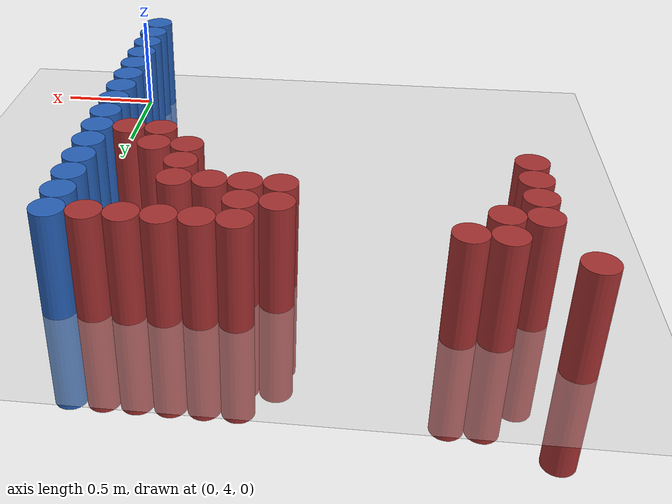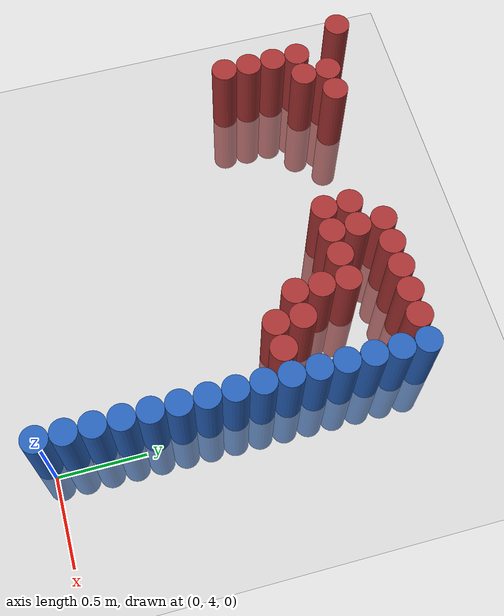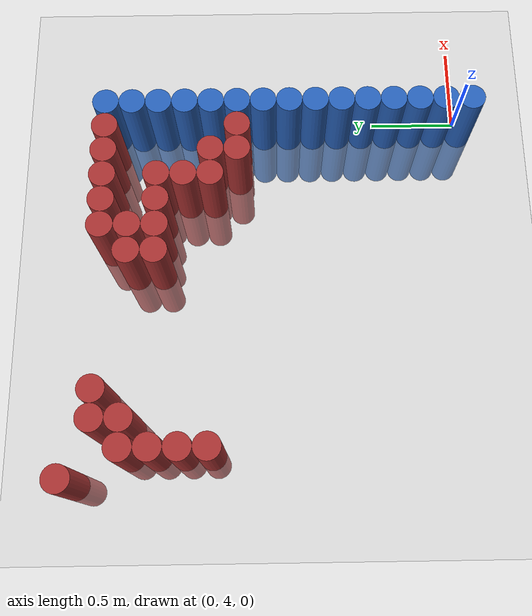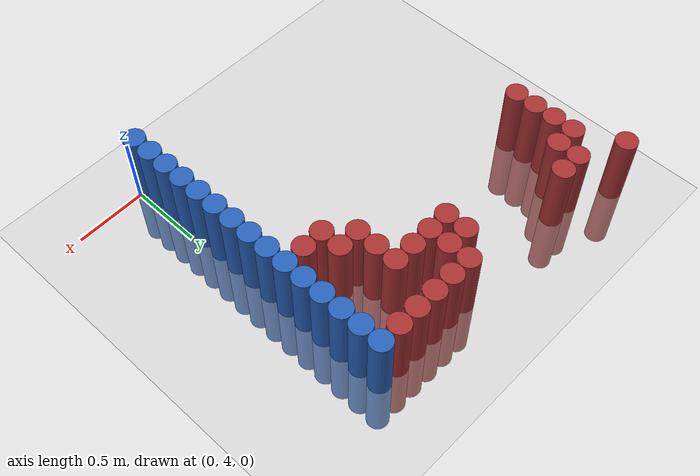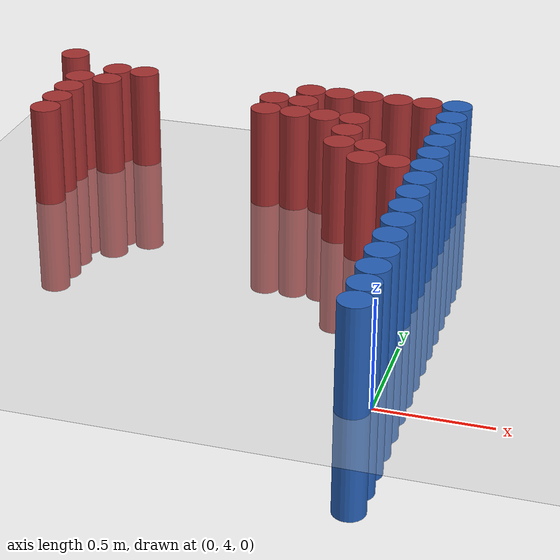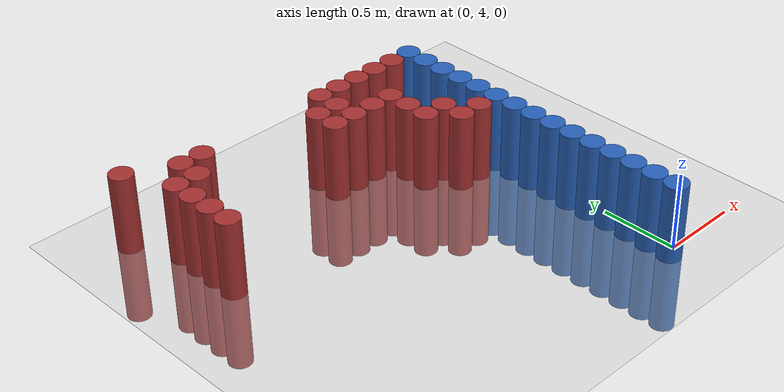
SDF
<sdf version="1.6">
 <world name="default">
  <model name="ground_plane">
   <static>1</static>
   <link name="link">
    <collision name="collision">
     <geometry><plane><normal>0 0 1</normal><size>100 100</size></plane></geometry>
     <surface><friction><ode><mu>100</mu><mu2>50</mu2></ode></friction></surface>
    </collision>
    <visual name="visual">
     <cast_shadows>0</cast_shadows>
     <geometry><plane><normal>0 0 1</normal><size>100 100</size></plane></geometry>
     <material>
      <script><uri>file://media/materials/scripts/gazebo.material</uri><name>Gazebo/Grey</name></script>
     </material>
    </visual>
   </link>
  </model>
  <model name="unit_cylinder_80">
   <static>1</static>
   <pose>-0.075000 3.975000 0.000000 0.000000 0.000000 0.000000</pose>
   <link name="link">
    <inertial>
     <mass>1</mass>
     <inertia><ixx>0.145833</ixx><ixy>0</ixy><ixz>0</ixz><iyy>0.145833</iyy><iyz>0</iyz><izz>0.125</izz></inertia>
    </inertial>
    <collision name="collision">
     <geometry><cylinder><radius>0.075000</radius><length>1</length></cylinder></geometry>
    </collision>
    <visual name="visual">
     <geometry><cylinder><radius>0.075000</radius><length>1</length></cylinder></geometry>
     <material>
      <ambient>0.152000 0.379000 0.720000 1</ambient>
      <diffuse>0.152000 0.379000 0.720000 1</diffuse>
     </material>
     <material>
      <script><name>Gazebo/Grey</name><uri>file://media/materials/scripts/gazebo.material</uri></script>
     </material>
    </visual>
    <sensor name="sensor_contact" type="contact"><contact><collision>collision</collision></contact></sensor>
   </link>
   <plugin filename="gz-sim-touchplugin-system" name="gz::sim::systems::TouchPlugin">
    <target>robot</target>
    <namespace>robot</namespace>
    <time>0.001</time>
    <enabled>true</enabled>
   </plugin>
  </model>
  <model name="unit_cylinder_82">
   <static>1</static>
   <pose>-0.075000 4.125000 0.000000 0.000000 0.000000 0.000000</pose>
   <link name="link">
    <inertial>
     <mass>1</mass>
     <inertia><ixx>0.145833</ixx><ixy>0</ixy><ixz>0</ixz><iyy>0.145833</iyy><iyz>0</iyz><izz>0.125</izz></inertia>
    </inertial>
    <collision name="collision">
     <geometry><cylinder><radius>0.075000</radius><length>1</length></cylinder></geometry>
    </collision>
    <visual name="visual">
     <geometry><cylinder><radius>0.075000</radius><length>1</length></cylinder></geometry>
     <material>
      <ambient>0.152000 0.379000 0.720000 1</ambient>
      <diffuse>0.152000 0.379000 0.720000 1</diffuse>
     </material>
     <material>
      <script><name>Gazebo/Grey</name><uri>file://media/materials/scripts/gazebo.material</uri></script>
     </material>
    </visual>
    <sensor name="sensor_contact" type="contact"><contact><collision>collision</collision></contact></sensor>
   </link>
   <plugin filename="gz-sim-touchplugin-system" name="gz::sim::systems::TouchPlugin">
    <target>robot</target>
    <namespace>robot</namespace>
    <time>0.001</time>
    <enabled>true</enabled>
   </plugin>
  </model>
  <model name="unit_cylinder_84">
   <static>1</static>
   <pose>-0.075000 4.275000 0.000000 0.000000 0.000000 0.000000</pose>
   <link name="link">
    <inertial>
     <mass>1</mass>
     <inertia><ixx>0.145833</ixx><ixy>0</ixy><ixz>0</ixz><iyy>0.145833</iyy><iyz>0</iyz><izz>0.125</izz></inertia>
    </inertial>
    <collision name="collision">
     <geometry><cylinder><radius>0.075000</radius><length>1</length></cylinder></geometry>
    </collision>
    <visual name="visual">
     <geometry><cylinder><radius>0.075000</radius><length>1</length></cylinder></geometry>
     <material>
      <ambient>0.152000 0.379000 0.720000 1</ambient>
      <diffuse>0.152000 0.379000 0.720000 1</diffuse>
     </material>
     <material>
      <script><name>Gazebo/Grey</name><uri>file://media/materials/scripts/gazebo.material</uri></script>
     </material>
    </visual>
    <sensor name="sensor_contact" type="contact"><contact><collision>collision</collision></contact></sensor>
   </link>
   <plugin filename="gz-sim-touchplugin-system" name="gz::sim::systems::TouchPlugin">
    <target>robot</target>
    <namespace>robot</namespace>
    <time>0.001</time>
    <enabled>true</enabled>
   </plugin>
  </model>
  <model name="unit_cylinder_86">
   <static>1</static>
   <pose>-0.075000 4.425000 0.000000 0.000000 0.000000 0.000000</pose>
   <link name="link">
    <inertial>
     <mass>1</mass>
     <inertia><ixx>0.145833</ixx><ixy>0</ixy><ixz>0</ixz><iyy>0.145833</iyy><iyz>0</iyz><izz>0.125</izz></inertia>
    </inertial>
    <collision name="collision">
     <geometry><cylinder><radius>0.075000</radius><length>1</length></cylinder></geometry>
    </collision>
    <visual name="visual">
     <geometry><cylinder><radius>0.075000</radius><length>1</length></cylinder></geometry>
     <material>
      <ambient>0.152000 0.379000 0.720000 1</ambient>
      <diffuse>0.152000 0.379000 0.720000 1</diffuse>
     </material>
     <material>
      <script><name>Gazebo/Grey</name><uri>file://media/materials/scripts/gazebo.material</uri></script>
     </material>
    </visual>
    <sensor name="sensor_contact" type="contact"><contact><collision>collision</collision></contact></sensor>
   </link>
   <plugin filename="gz-sim-touchplugin-system" name="gz::sim::systems::TouchPlugin">
    <target>robot</target>
    <namespace>robot</namespace>
    <time>0.001</time>
    <enabled>true</enabled>
   </plugin>
  </model>
  <model name="unit_cylinder_88">
   <static>1</static>
   <pose>-0.075000 4.575000 0.000000 0.000000 0.000000 0.000000</pose>
   <link name="link">
    <inertial>
     <mass>1</mass>
     <inertia><ixx>0.145833</ixx><ixy>0</ixy><ixz>0</ixz><iyy>0.145833</iyy><iyz>0</iyz><izz>0.125</izz></inertia>
    </inertial>
    <collision name="collision">
     <geometry><cylinder><radius>0.075000</radius><length>1</length></cylinder></geometry>
    </collision>
    <visual name="visual">
     <geometry><cylinder><radius>0.075000</radius><length>1</length></cylinder></geometry>
     <material>
      <ambient>0.152000 0.379000 0.720000 1</ambient>
      <diffuse>0.152000 0.379000 0.720000 1</diffuse>
     </material>
     <material>
      <script><name>Gazebo/Grey</name><uri>file://media/materials/scripts/gazebo.material</uri></script>
     </material>
    </visual>
    <sensor name="sensor_contact" type="contact"><contact><collision>collision</collision></contact></sensor>
   </link>
   <plugin filename="gz-sim-touchplugin-system" name="gz::sim::systems::TouchPlugin">
    <target>robot</target>
    <namespace>robot</namespace>
    <time>0.001</time>
    <enabled>true</enabled>
   </plugin>
  </model>
  <model name="unit_cylinder_90">
   <static>1</static>
   <pose>-0.075000 4.725000 0.000000 0.000000 0.000000 0.000000</pose>
   <link name="link">
    <inertial>
     <mass>1</mass>
     <inertia><ixx>0.145833</ixx><ixy>0</ixy><ixz>0</ixz><iyy>0.145833</iyy><iyz>0</iyz><izz>0.125</izz></inertia>
    </inertial>
    <collision name="collision">
     <geometry><cylinder><radius>0.075000</radius><length>1</length></cylinder></geometry>
    </collision>
    <visual name="visual">
     <geometry><cylinder><radius>0.075000</radius><length>1</length></cylinder></geometry>
     <material>
      <ambient>0.152000 0.379000 0.720000 1</ambient>
      <diffuse>0.152000 0.379000 0.720000 1</diffuse>
     </material>
     <material>
      <script><name>Gazebo/Grey</name><uri>file://media/materials/scripts/gazebo.material</uri></script>
     </material>
    </visual>
    <sensor name="sensor_contact" type="contact"><contact><collision>collision</collision></contact></sensor>
   </link>
   <plugin filename="gz-sim-touchplugin-system" name="gz::sim::systems::TouchPlugin">
    <target>robot</target>
    <namespace>robot</namespace>
    <time>0.001</time>
    <enabled>true</enabled>
   </plugin>
  </model>
  <model name="unit_cylinder_92">
   <static>1</static>
   <pose>-0.075000 4.875000 0.000000 0.000000 0.000000 0.000000</pose>
   <link name="link">
    <inertial>
     <mass>1</mass>
     <inertia><ixx>0.145833</ixx><ixy>0</ixy><ixz>0</ixz><iyy>0.145833</iyy><iyz>0</iyz><izz>0.125</izz></inertia>
    </inertial>
    <collision name="collision">
     <geometry><cylinder><radius>0.075000</radius><length>1</length></cylinder></geometry>
    </collision>
    <visual name="visual">
     <geometry><cylinder><radius>0.075000</radius><length>1</length></cylinder></geometry>
     <material>
      <ambient>0.152000 0.379000 0.720000 1</ambient>
      <diffuse>0.152000 0.379000 0.720000 1</diffuse>
     </material>
     <material>
      <script><name>Gazebo/Grey</name><uri>file://media/materials/scripts/gazebo.material</uri></script>
     </material>
    </visual>
    <sensor name="sensor_contact" type="contact"><contact><collision>collision</collision></contact></sensor>
   </link>
   <plugin filename="gz-sim-touchplugin-system" name="gz::sim::systems::TouchPlugin">
    <target>robot</target>
    <namespace>robot</namespace>
    <time>0.001</time>
    <enabled>true</enabled>
   </plugin>
  </model>
  <model name="unit_cylinder_94">
   <static>1</static>
   <pose>-0.075000 5.025000 0.000000 0.000000 0.000000 0.000000</pose>
   <link name="link">
    <inertial>
     <mass>1</mass>
     <inertia><ixx>0.145833</ixx><ixy>0</ixy><ixz>0</ixz><iyy>0.145833</iyy><iyz>0</iyz><izz>0.125</izz></inertia>
    </inertial>
    <collision name="collision">
     <geometry><cylinder><radius>0.075000</radius><length>1</length></cylinder></geometry>
    </collision>
    <visual name="visual">
     <geometry><cylinder><radius>0.075000</radius><length>1</length></cylinder></geometry>
     <material>
      <ambient>0.152000 0.379000 0.720000 1</ambient>
      <diffuse>0.152000 0.379000 0.720000 1</diffuse>
     </material>
     <material>
      <script><name>Gazebo/Grey</name><uri>file://media/materials/scripts/gazebo.material</uri></script>
     </material>
    </visual>
    <sensor name="sensor_contact" type="contact"><contact><collision>collision</collision></contact></sensor>
   </link>
   <plugin filename="gz-sim-touchplugin-system" name="gz::sim::systems::TouchPlugin">
    <target>robot</target>
    <namespace>robot</namespace>
    <time>0.001</time>
    <enabled>true</enabled>
   </plugin>
  </model>
  <model name="unit_cylinder_219">
   <static>1</static>
   <pose>-2.175000 6.225000 0.000000 0.000000 0.000000 0.000000</pose>
   <link name="link">
    <inertial>
     <mass>1</mass>
     <inertia><ixx>0.145833</ixx><ixy>0</ixy><ixz>0</ixz><iyy>0.145833</iyy><iyz>0</iyz><izz>0.125</izz></inertia>
    </inertial>
    <collision name="collision">
     <geometry><cylinder><radius>0.075000</radius><length>1</length></cylinder></geometry>
    </collision>
    <visual name="visual">
     <geometry><cylinder><radius>0.075000</radius><length>1</length></cylinder></geometry>
     <material>
      <ambient>0.648000 0.192000 0.192000 1</ambient>
      <diffuse>0.648000 0.192000 0.192000 1</diffuse>
     </material>
     <material>
      <script><name>Gazebo/Grey</name><uri>file://media/materials/scripts/gazebo.material</uri></script>
     </material>
    </visual>
    <sensor name="sensor_contact" type="contact"><contact><collision>collision</collision></contact></sensor>
   </link>
   <plugin filename="gz-sim-touchplugin-system" name="gz::sim::systems::TouchPlugin">
    <target>robot</target>
    <namespace>robot</namespace>
    <time>0.001</time>
    <enabled>true</enabled>
   </plugin>
  </model>
  <model name="unit_cylinder_220">
   <static>1</static>
   <pose>-2.025000 5.475000 0.000000 0.000000 0.000000 0.000000</pose>
   <link name="link">
    <inertial>
     <mass>1</mass>
     <inertia><ixx>0.145833</ixx><ixy>0</ixy><ixz>0</ixz><iyy>0.145833</iyy><iyz>0</iyz><izz>0.125</izz></inertia>
    </inertial>
    <collision name="collision">
     <geometry><cylinder><radius>0.075000</radius><length>1</length></cylinder></geometry>
    </collision>
    <visual name="visual">
     <geometry><cylinder><radius>0.075000</radius><length>1</length></cylinder></geometry>
     <material>
      <ambient>0.648000 0.192000 0.192000 1</ambient>
      <diffuse>0.648000 0.192000 0.192000 1</diffuse>
     </material>
     <material>
      <script><name>Gazebo/Grey</name><uri>file://media/materials/scripts/gazebo.material</uri></script>
     </material>
    </visual>
    <sensor name="sensor_contact" type="contact"><contact><collision>collision</collision></contact></sensor>
   </link>
   <plugin filename="gz-sim-touchplugin-system" name="gz::sim::systems::TouchPlugin">
    <target>robot</target>
    <namespace>robot</namespace>
    <time>0.001</time>
    <enabled>true</enabled>
   </plugin>
  </model>
  <model name="unit_cylinder_221">
   <static>1</static>
   <pose>-2.025000 5.625000 0.000000 0.000000 0.000000 0.000000</pose>
   <link name="link">
    <inertial>
     <mass>1</mass>
     <inertia><ixx>0.145833</ixx><ixy>0</ixy><ixz>0</ixz><iyy>0.145833</iyy><iyz>0</iyz><izz>0.125</izz></inertia>
    </inertial>
    <collision name="collision">
     <geometry><cylinder><radius>0.075000</radius><length>1</length></cylinder></geometry>
    </collision>
    <visual name="visual">
     <geometry><cylinder><radius>0.075000</radius><length>1</length></cylinder></geometry>
     <material>
      <ambient>0.648000 0.192000 0.192000 1</ambient>
      <diffuse>0.648000 0.192000 0.192000 1</diffuse>
     </material>
     <material>
      <script><name>Gazebo/Grey</name><uri>file://media/materials/scripts/gazebo.material</uri></script>
     </material>
    </visual>
    <sensor name="sensor_contact" type="contact"><contact><collision>collision</collision></contact></sensor>
   </link>
   <plugin filename="gz-sim-touchplugin-system" name="gz::sim::systems::TouchPlugin">
    <target>robot</target>
    <namespace>robot</namespace>
    <time>0.001</time>
    <enabled>true</enabled>
   </plugin>
  </model>
  <model name="unit_cylinder_222">
   <static>1</static>
   <pose>-2.025000 5.775000 0.000000 0.000000 0.000000 0.000000</pose>
   <link name="link">
    <inertial>
     <mass>1</mass>
     <inertia><ixx>0.145833</ixx><ixy>0</ixy><ixz>0</ixz><iyy>0.145833</iyy><iyz>0</iyz><izz>0.125</izz></inertia>
    </inertial>
    <collision name="collision">
     <geometry><cylinder><radius>0.075000</radius><length>1</length></cylinder></geometry>
    </collision>
    <visual name="visual">
     <geometry><cylinder><radius>0.075000</radius><length>1</length></cylinder></geometry>
     <material>
      <ambient>0.648000 0.192000 0.192000 1</ambient>
      <diffuse>0.648000 0.192000 0.192000 1</diffuse>
     </material>
     <material>
      <script><name>Gazebo/Grey</name><uri>file://media/materials/scripts/gazebo.material</uri></script>
     </material>
    </visual>
    <sensor name="sensor_contact" type="contact"><contact><collision>collision</collision></contact></sensor>
   </link>
   <plugin filename="gz-sim-touchplugin-system" name="gz::sim::systems::TouchPlugin">
    <target>robot</target>
    <namespace>robot</namespace>
    <time>0.001</time>
    <enabled>true</enabled>
   </plugin>
  </model>
  <model name="unit_cylinder_223">
   <static>1</static>
   <pose>-2.025000 5.925000 0.000000 0.000000 0.000000 0.000000</pose>
   <link name="link">
    <inertial>
     <mass>1</mass>
     <inertia><ixx>0.145833</ixx><ixy>0</ixy><ixz>0</ixz><iyy>0.145833</iyy><iyz>0</iyz><izz>0.125</izz></inertia>
    </inertial>
    <collision name="collision">
     <geometry><cylinder><radius>0.075000</radius><length>1</length></cylinder></geometry>
    </collision>
    <visual name="visual">
     <geometry><cylinder><radius>0.075000</radius><length>1</length></cylinder></geometry>
     <material>
      <ambient>0.648000 0.192000 0.192000 1</ambient>
      <diffuse>0.648000 0.192000 0.192000 1</diffuse>
     </material>
     <material>
      <script><name>Gazebo/Grey</name><uri>file://media/materials/scripts/gazebo.material</uri></script>
     </material>
    </visual>
    <sensor name="sensor_contact" type="contact"><contact><collision>collision</collision></contact></sensor>
   </link>
   <plugin filename="gz-sim-touchplugin-system" name="gz::sim::systems::TouchPlugin">
    <target>robot</target>
    <namespace>robot</namespace>
    <time>0.001</time>
    <enabled>true</enabled>
   </plugin>
  </model>
  <model name="unit_cylinder_226">
   <static>1</static>
   <pose>-1.875000 5.925000 0.000000 0.000000 0.000000 0.000000</pose>
   <link name="link">
    <inertial>
     <mass>1</mass>
     <inertia><ixx>0.145833</ixx><ixy>0</ixy><ixz>0</ixz><iyy>0.145833</iyy><iyz>0</iyz><izz>0.125</izz></inertia>
    </inertial>
    <collision name="collision">
     <geometry><cylinder><radius>0.075000</radius><length>1</length></cylinder></geometry>
    </collision>
    <visual name="visual">
     <geometry><cylinder><radius>0.075000</radius><length>1</length></cylinder></geometry>
     <material>
      <ambient>0.648000 0.192000 0.192000 1</ambient>
      <diffuse>0.648000 0.192000 0.192000 1</diffuse>
     </material>
     <material>
      <script><name>Gazebo/Grey</name><uri>file://media/materials/scripts/gazebo.material</uri></script>
     </material>
    </visual>
    <sensor name="sensor_contact" type="contact"><contact><collision>collision</collision></contact></sensor>
   </link>
   <plugin filename="gz-sim-touchplugin-system" name="gz::sim::systems::TouchPlugin">
    <target>robot</target>
    <namespace>robot</namespace>
    <time>0.001</time>
    <enabled>true</enabled>
   </plugin>
  </model>
  <model name="unit_cylinder_227">
   <static>1</static>
   <pose>-1.875000 6.075000 0.000000 0.000000 0.000000 0.000000</pose>
   <link name="link">
    <inertial>
     <mass>1</mass>
     <inertia><ixx>0.145833</ixx><ixy>0</ixy><ixz>0</ixz><iyy>0.145833</iyy><iyz>0</iyz><izz>0.125</izz></inertia>
    </inertial>
    <collision name="collision">
     <geometry><cylinder><radius>0.075000</radius><length>1</length></cylinder></geometry>
    </collision>
    <visual name="visual">
     <geometry><cylinder><radius>0.075000</radius><length>1</length></cylinder></geometry>
     <material>
      <ambient>0.648000 0.192000 0.192000 1</ambient>
      <diffuse>0.648000 0.192000 0.192000 1</diffuse>
     </material>
     <material>
      <script><name>Gazebo/Grey</name><uri>file://media/materials/scripts/gazebo.material</uri></script>
     </material>
    </visual>
    <sensor name="sensor_contact" type="contact"><contact><collision>collision</collision></contact></sensor>
   </link>
   <plugin filename="gz-sim-touchplugin-system" name="gz::sim::systems::TouchPlugin">
    <target>robot</target>
    <namespace>robot</namespace>
    <time>0.001</time>
    <enabled>true</enabled>
   </plugin>
  </model>
  <model name="unit_cylinder_231">
   <static>1</static>
   <pose>-1.725000 6.075000 0.000000 0.000000 0.000000 0.000000</pose>
   <link name="link">
    <inertial>
     <mass>1</mass>
     <inertia><ixx>0.145833</ixx><ixy>0</ixy><ixz>0</ixz><iyy>0.145833</iyy><iyz>0</iyz><izz>0.125</izz></inertia>
    </inertial>
    <collision name="collision">
     <geometry><cylinder><radius>0.075000</radius><length>1</length></cylinder></geometry>
    </collision>
    <visual name="visual">
     <geometry><cylinder><radius>0.075000</radius><length>1</length></cylinder></geometry>
     <material>
      <ambient>0.648000 0.192000 0.192000 1</ambient>
      <diffuse>0.648000 0.192000 0.192000 1</diffuse>
     </material>
     <material>
      <script><name>Gazebo/Grey</name><uri>file://media/materials/scripts/gazebo.material</uri></script>
     </material>
    </visual>
    <sensor name="sensor_contact" type="contact"><contact><collision>collision</collision></contact></sensor>
   </link>
   <plugin filename="gz-sim-touchplugin-system" name="gz::sim::systems::TouchPlugin">
    <target>robot</target>
    <namespace>robot</namespace>
    <time>0.001</time>
    <enabled>true</enabled>
   </plugin>
  </model>
  <model name="unit_cylinder_257">
   <static>1</static>
   <pose>-0.975000 5.775000 0.000000 0.000000 0.000000 0.000000</pose>
   <link name="link">
    <inertial>
     <mass>1</mass>
     <inertia><ixx>0.145833</ixx><ixy>0</ixy><ixz>0</ixz><iyy>0.145833</iyy><iyz>0</iyz><izz>0.125</izz></inertia>
    </inertial>
    <collision name="collision">
     <geometry><cylinder><radius>0.075000</radius><length>1</length></cylinder></geometry>
    </collision>
    <visual name="visual">
     <geometry><cylinder><radius>0.075000</radius><length>1</length></cylinder></geometry>
     <material>
      <ambient>0.648000 0.192000 0.192000 1</ambient>
      <diffuse>0.648000 0.192000 0.192000 1</diffuse>
     </material>
     <material>
      <script><name>Gazebo/Grey</name><uri>file://media/materials/scripts/gazebo.material</uri></script>
     </material>
    </visual>
    <sensor name="sensor_contact" type="contact"><contact><collision>collision</collision></contact></sensor>
   </link>
   <plugin filename="gz-sim-touchplugin-system" name="gz::sim::systems::TouchPlugin">
    <target>robot</target>
    <namespace>robot</namespace>
    <time>0.001</time>
    <enabled>true</enabled>
   </plugin>
  </model>
  <model name="unit_cylinder_258">
   <static>1</static>
   <pose>-0.975000 5.925000 0.000000 0.000000 0.000000 0.000000</pose>
   <link name="link">
    <inertial>
     <mass>1</mass>
     <inertia><ixx>0.145833</ixx><ixy>0</ixy><ixz>0</ixz><iyy>0.145833</iyy><iyz>0</iyz><izz>0.125</izz></inertia>
    </inertial>
    <collision name="collision">
     <geometry><cylinder><radius>0.075000</radius><length>1</length></cylinder></geometry>
    </collision>
    <visual name="visual">
     <geometry><cylinder><radius>0.075000</radius><length>1</length></cylinder></geometry>
     <material>
      <ambient>0.648000 0.192000 0.192000 1</ambient>
      <diffuse>0.648000 0.192000 0.192000 1</diffuse>
     </material>
     <material>
      <script><name>Gazebo/Grey</name><uri>file://media/materials/scripts/gazebo.material</uri></script>
     </material>
    </visual>
    <sensor name="sensor_contact" type="contact"><contact><collision>collision</collision></contact></sensor>
   </link>
   <plugin filename="gz-sim-touchplugin-system" name="gz::sim::systems::TouchPlugin">
    <target>robot</target>
    <namespace>robot</namespace>
    <time>0.001</time>
    <enabled>true</enabled>
   </plugin>
  </model>
  <model name="unit_cylinder_263">
   <static>1</static>
   <pose>-0.825000 5.775000 0.000000 0.000000 0.000000 0.000000</pose>
   <link name="link">
    <inertial>
     <mass>1</mass>
     <inertia><ixx>0.145833</ixx><ixy>0</ixy><ixz>0</ixz><iyy>0.145833</iyy><iyz>0</iyz><izz>0.125</izz></inertia>
    </inertial>
    <collision name="collision">
     <geometry><cylinder><radius>0.075000</radius><length>1</length></cylinder></geometry>
    </collision>
    <visual name="visual">
     <geometry><cylinder><radius>0.075000</radius><length>1</length></cylinder></geometry>
     <material>
      <ambient>0.648000 0.192000 0.192000 1</ambient>
      <diffuse>0.648000 0.192000 0.192000 1</diffuse>
     </material>
     <material>
      <script><name>Gazebo/Grey</name><uri>file://media/materials/scripts/gazebo.material</uri></script>
     </material>
    </visual>
    <sensor name="sensor_contact" type="contact"><contact><collision>collision</collision></contact></sensor>
   </link>
   <plugin filename="gz-sim-touchplugin-system" name="gz::sim::systems::TouchPlugin">
    <target>robot</target>
    <namespace>robot</namespace>
    <time>0.001</time>
    <enabled>true</enabled>
   </plugin>
  </model>
  <model name="unit_cylinder_264">
   <static>1</static>
   <pose>-0.825000 5.925000 0.000000 0.000000 0.000000 0.000000</pose>
   <link name="link">
    <inertial>
     <mass>1</mass>
     <inertia><ixx>0.145833</ixx><ixy>0</ixy><ixz>0</ixz><iyy>0.145833</iyy><iyz>0</iyz><izz>0.125</izz></inertia>
    </inertial>
    <collision name="collision">
     <geometry><cylinder><radius>0.075000</radius><length>1</length></cylinder></geometry>
    </collision>
    <visual name="visual">
     <geometry><cylinder><radius>0.075000</radius><length>1</length></cylinder></geometry>
     <material>
      <ambient>0.648000 0.192000 0.192000 1</ambient>
      <diffuse>0.648000 0.192000 0.192000 1</diffuse>
     </material>
     <material>
      <script><name>Gazebo/Grey</name><uri>file://media/materials/scripts/gazebo.material</uri></script>
     </material>
    </visual>
    <sensor name="sensor_contact" type="contact"><contact><collision>collision</collision></contact></sensor>
   </link>
   <plugin filename="gz-sim-touchplugin-system" name="gz::sim::systems::TouchPlugin">
    <target>robot</target>
    <namespace>robot</namespace>
    <time>0.001</time>
    <enabled>true</enabled>
   </plugin>
  </model>
  <model name="unit_cylinder_265">
   <static>1</static>
   <pose>-0.825000 6.075000 0.000000 0.000000 0.000000 0.000000</pose>
   <link name="link">
    <inertial>
     <mass>1</mass>
     <inertia><ixx>0.145833</ixx><ixy>0</ixy><ixz>0</ixz><iyy>0.145833</iyy><iyz>0</iyz><izz>0.125</izz></inertia>
    </inertial>
    <collision name="collision">
     <geometry><cylinder><radius>0.075000</radius><length>1</length></cylinder></geometry>
    </collision>
    <visual name="visual">
     <geometry><cylinder><radius>0.075000</radius><length>1</length></cylinder></geometry>
     <material>
      <ambient>0.648000 0.192000 0.192000 1</ambient>
      <diffuse>0.648000 0.192000 0.192000 1</diffuse>
     </material>
     <material>
      <script><name>Gazebo/Grey</name><uri>file://media/materials/scripts/gazebo.material</uri></script>
     </material>
    </visual>
    <sensor name="sensor_contact" type="contact"><contact><collision>collision</collision></contact></sensor>
   </link>
   <plugin filename="gz-sim-touchplugin-system" name="gz::sim::systems::TouchPlugin">
    <target>robot</target>
    <namespace>robot</namespace>
    <time>0.001</time>
    <enabled>true</enabled>
   </plugin>
  </model>
  <model name="unit_cylinder_275">
   <static>1</static>
   <pose>-0.675000 5.775000 0.000000 0.000000 0.000000 0.000000</pose>
   <link name="link">
    <inertial>
     <mass>1</mass>
     <inertia><ixx>0.145833</ixx><ixy>0</ixy><ixz>0</ixz><iyy>0.145833</iyy><iyz>0</iyz><izz>0.125</izz></inertia>
    </inertial>
    <collision name="collision">
     <geometry><cylinder><radius>0.075000</radius><length>1</length></cylinder></geometry>
    </collision>
    <visual name="visual">
     <geometry><cylinder><radius>0.075000</radius><length>1</length></cylinder></geometry>
     <material>
      <ambient>0.648000 0.192000 0.192000 1</ambient>
      <diffuse>0.648000 0.192000 0.192000 1</diffuse>
     </material>
     <material>
      <script><name>Gazebo/Grey</name><uri>file://media/materials/scripts/gazebo.material</uri></script>
     </material>
    </visual>
    <sensor name="sensor_contact" type="contact"><contact><collision>collision</collision></contact></sensor>
   </link>
   <plugin filename="gz-sim-touchplugin-system" name="gz::sim::systems::TouchPlugin">
    <target>robot</target>
    <namespace>robot</namespace>
    <time>0.001</time>
    <enabled>true</enabled>
   </plugin>
  </model>
  <model name="unit_cylinder_276">
   <static>1</static>
   <pose>-0.675000 6.075000 0.000000 0.000000 0.000000 0.000000</pose>
   <link name="link">
    <inertial>
     <mass>1</mass>
     <inertia><ixx>0.145833</ixx><ixy>0</ixy><ixz>0</ixz><iyy>0.145833</iyy><iyz>0</iyz><izz>0.125</izz></inertia>
    </inertial>
    <collision name="collision">
     <geometry><cylinder><radius>0.075000</radius><length>1</length></cylinder></geometry>
    </collision>
    <visual name="visual">
     <geometry><cylinder><radius>0.075000</radius><length>1</length></cylinder></geometry>
     <material>
      <ambient>0.648000 0.192000 0.192000 1</ambient>
      <diffuse>0.648000 0.192000 0.192000 1</diffuse>
     </material>
     <material>
      <script><name>Gazebo/Grey</name><uri>file://media/materials/scripts/gazebo.material</uri></script>
     </material>
    </visual>
    <sensor name="sensor_contact" type="contact"><contact><collision>collision</collision></contact></sensor>
   </link>
   <plugin filename="gz-sim-touchplugin-system" name="gz::sim::systems::TouchPlugin">
    <target>robot</target>
    <namespace>robot</namespace>
    <time>0.001</time>
    <enabled>true</enabled>
   </plugin>
  </model>
  <model name="unit_cylinder_287">
   <static>1</static>
   <pose>-0.525000 5.475000 0.000000 0.000000 0.000000 0.000000</pose>
   <link name="link">
    <inertial>
     <mass>1</mass>
     <inertia><ixx>0.145833</ixx><ixy>0</ixy><ixz>0</ixz><iyy>0.145833</iyy><iyz>0</iyz><izz>0.125</izz></inertia>
    </inertial>
    <collision name="collision">
     <geometry><cylinder><radius>0.075000</radius><length>1</length></cylinder></geometry>
    </collision>
    <visual name="visual">
     <geometry><cylinder><radius>0.075000</radius><length>1</length></cylinder></geometry>
     <material>
      <ambient>0.648000 0.192000 0.192000 1</ambient>
      <diffuse>0.648000 0.192000 0.192000 1</diffuse>
     </material>
     <material>
      <script><name>Gazebo/Grey</name><uri>file://media/materials/scripts/gazebo.material</uri></script>
     </material>
    </visual>
    <sensor name="sensor_contact" type="contact"><contact><collision>collision</collision></contact></sensor>
   </link>
   <plugin filename="gz-sim-touchplugin-system" name="gz::sim::systems::TouchPlugin">
    <target>robot</target>
    <namespace>robot</namespace>
    <time>0.001</time>
    <enabled>true</enabled>
   </plugin>
  </model>
  <model name="unit_cylinder_288">
   <static>1</static>
   <pose>-0.525000 5.625000 0.000000 0.000000 0.000000 0.000000</pose>
   <link name="link">
    <inertial>
     <mass>1</mass>
     <inertia><ixx>0.145833</ixx><ixy>0</ixy><ixz>0</ixz><iyy>0.145833</iyy><iyz>0</iyz><izz>0.125</izz></inertia>
    </inertial>
    <collision name="collision">
     <geometry><cylinder><radius>0.075000</radius><length>1</length></cylinder></geometry>
    </collision>
    <visual name="visual">
     <geometry><cylinder><radius>0.075000</radius><length>1</length></cylinder></geometry>
     <material>
      <ambient>0.648000 0.192000 0.192000 1</ambient>
      <diffuse>0.648000 0.192000 0.192000 1</diffuse>
     </material>
     <material>
      <script><name>Gazebo/Grey</name><uri>file://media/materials/scripts/gazebo.material</uri></script>
     </material>
    </visual>
    <sensor name="sensor_contact" type="contact"><contact><collision>collision</collision></contact></sensor>
   </link>
   <plugin filename="gz-sim-touchplugin-system" name="gz::sim::systems::TouchPlugin">
    <target>robot</target>
    <namespace>robot</namespace>
    <time>0.001</time>
    <enabled>true</enabled>
   </plugin>
  </model>
  <model name="unit_cylinder_289">
   <static>1</static>
   <pose>-0.525000 5.775000 0.000000 0.000000 0.000000 0.000000</pose>
   <link name="link">
    <inertial>
     <mass>1</mass>
     <inertia><ixx>0.145833</ixx><ixy>0</ixy><ixz>0</ixz><iyy>0.145833</iyy><iyz>0</iyz><izz>0.125</izz></inertia>
    </inertial>
    <collision name="collision">
     <geometry><cylinder><radius>0.075000</radius><length>1</length></cylinder></geometry>
    </collision>
    <visual name="visual">
     <geometry><cylinder><radius>0.075000</radius><length>1</length></cylinder></geometry>
     <material>
      <ambient>0.648000 0.192000 0.192000 1</ambient>
      <diffuse>0.648000 0.192000 0.192000 1</diffuse>
     </material>
     <material>
      <script><name>Gazebo/Grey</name><uri>file://media/materials/scripts/gazebo.material</uri></script>
     </material>
    </visual>
    <sensor name="sensor_contact" type="contact"><contact><collision>collision</collision></contact></sensor>
   </link>
   <plugin filename="gz-sim-touchplugin-system" name="gz::sim::systems::TouchPlugin">
    <target>robot</target>
    <namespace>robot</namespace>
    <time>0.001</time>
    <enabled>true</enabled>
   </plugin>
  </model>
  <model name="unit_cylinder_290">
   <static>1</static>
   <pose>-0.525000 6.075000 0.000000 0.000000 0.000000 0.000000</pose>
   <link name="link">
    <inertial>
     <mass>1</mass>
     <inertia><ixx>0.145833</ixx><ixy>0</ixy><ixz>0</ixz><iyy>0.145833</iyy><iyz>0</iyz><izz>0.125</izz></inertia>
    </inertial>
    <collision name="collision">
     <geometry><cylinder><radius>0.075000</radius><length>1</length></cylinder></geometry>
    </collision>
    <visual name="visual">
     <geometry><cylinder><radius>0.075000</radius><length>1</length></cylinder></geometry>
     <material>
      <ambient>0.648000 0.192000 0.192000 1</ambient>
      <diffuse>0.648000 0.192000 0.192000 1</diffuse>
     </material>
     <material>
      <script><name>Gazebo/Grey</name><uri>file://media/materials/scripts/gazebo.material</uri></script>
     </material>
    </visual>
    <sensor name="sensor_contact" type="contact"><contact><collision>collision</collision></contact></sensor>
   </link>
   <plugin filename="gz-sim-touchplugin-system" name="gz::sim::systems::TouchPlugin">
    <target>robot</target>
    <namespace>robot</namespace>
    <time>0.001</time>
    <enabled>true</enabled>
   </plugin>
  </model>
  <model name="unit_cylinder_299">
   <static>1</static>
   <pose>-0.375000 5.325000 0.000000 0.000000 0.000000 0.000000</pose>
   <link name="link">
    <inertial>
     <mass>1</mass>
     <inertia><ixx>0.145833</ixx><ixy>0</ixy><ixz>0</ixz><iyy>0.145833</iyy><iyz>0</iyz><izz>0.125</izz></inertia>
    </inertial>
    <collision name="collision">
     <geometry><cylinder><radius>0.075000</radius><length>1</length></cylinder></geometry>
    </collision>
    <visual name="visual">
     <geometry><cylinder><radius>0.075000</radius><length>1</length></cylinder></geometry>
     <material>
      <ambient>0.648000 0.192000 0.192000 1</ambient>
      <diffuse>0.648000 0.192000 0.192000 1</diffuse>
     </material>
     <material>
      <script><name>Gazebo/Grey</name><uri>file://media/materials/scripts/gazebo.material</uri></script>
     </material>
    </visual>
    <sensor name="sensor_contact" type="contact"><contact><collision>collision</collision></contact></sensor>
   </link>
   <plugin filename="gz-sim-touchplugin-system" name="gz::sim::systems::TouchPlugin">
    <target>robot</target>
    <namespace>robot</namespace>
    <time>0.001</time>
    <enabled>true</enabled>
   </plugin>
  </model>
  <model name="unit_cylinder_300">
   <static>1</static>
   <pose>-0.375000 5.475000 0.000000 0.000000 0.000000 0.000000</pose>
   <link name="link">
    <inertial>
     <mass>1</mass>
     <inertia><ixx>0.145833</ixx><ixy>0</ixy><ixz>0</ixz><iyy>0.145833</iyy><iyz>0</iyz><izz>0.125</izz></inertia>
    </inertial>
    <collision name="collision">
     <geometry><cylinder><radius>0.075000</radius><length>1</length></cylinder></geometry>
    </collision>
    <visual name="visual">
     <geometry><cylinder><radius>0.075000</radius><length>1</length></cylinder></geometry>
     <material>
      <ambient>0.648000 0.192000 0.192000 1</ambient>
      <diffuse>0.648000 0.192000 0.192000 1</diffuse>
     </material>
     <material>
      <script><name>Gazebo/Grey</name><uri>file://media/materials/scripts/gazebo.material</uri></script>
     </material>
    </visual>
    <sensor name="sensor_contact" type="contact"><contact><collision>collision</collision></contact></sensor>
   </link>
   <plugin filename="gz-sim-touchplugin-system" name="gz::sim::systems::TouchPlugin">
    <target>robot</target>
    <namespace>robot</namespace>
    <time>0.001</time>
    <enabled>true</enabled>
   </plugin>
  </model>
  <model name="unit_cylinder_301">
   <static>1</static>
   <pose>-0.375000 6.075000 0.000000 0.000000 0.000000 0.000000</pose>
   <link name="link">
    <inertial>
     <mass>1</mass>
     <inertia><ixx>0.145833</ixx><ixy>0</ixy><ixz>0</ixz><iyy>0.145833</iyy><iyz>0</iyz><izz>0.125</izz></inertia>
    </inertial>
    <collision name="collision">
     <geometry><cylinder><radius>0.075000</radius><length>1</length></cylinder></geometry>
    </collision>
    <visual name="visual">
     <geometry><cylinder><radius>0.075000</radius><length>1</length></cylinder></geometry>
     <material>
      <ambient>0.648000 0.192000 0.192000 1</ambient>
      <diffuse>0.648000 0.192000 0.192000 1</diffuse>
     </material>
     <material>
      <script><name>Gazebo/Grey</name><uri>file://media/materials/scripts/gazebo.material</uri></script>
     </material>
    </visual>
    <sensor name="sensor_contact" type="contact"><contact><collision>collision</collision></contact></sensor>
   </link>
   <plugin filename="gz-sim-touchplugin-system" name="gz::sim::systems::TouchPlugin">
    <target>robot</target>
    <namespace>robot</namespace>
    <time>0.001</time>
    <enabled>true</enabled>
   </plugin>
  </model>
  <model name="unit_cylinder_308">
   <static>1</static>
   <pose>-0.225000 5.325000 0.000000 0.000000 0.000000 0.000000</pose>
   <link name="link">
    <inertial>
     <mass>1</mass>
     <inertia><ixx>0.145833</ixx><ixy>0</ixy><ixz>0</ixz><iyy>0.145833</iyy><iyz>0</iyz><izz>0.125</izz></inertia>
    </inertial>
    <collision name="collision">
     <geometry><cylinder><radius>0.075000</radius><length>1</length></cylinder></geometry>
    </collision>
    <visual name="visual">
     <geometry><cylinder><radius>0.075000</radius><length>1</length></cylinder></geometry>
     <material>
      <ambient>0.648000 0.192000 0.192000 1</ambient>
      <diffuse>0.648000 0.192000 0.192000 1</diffuse>
     </material>
     <material>
      <script><name>Gazebo/Grey</name><uri>file://media/materials/scripts/gazebo.material</uri></script>
     </material>
    </visual>
    <sensor name="sensor_contact" type="contact"><contact><collision>collision</collision></contact></sensor>
   </link>
   <plugin filename="gz-sim-touchplugin-system" name="gz::sim::systems::TouchPlugin">
    <target>robot</target>
    <namespace>robot</namespace>
    <time>0.001</time>
    <enabled>true</enabled>
   </plugin>
  </model>
  <model name="unit_cylinder_309">
   <static>1</static>
   <pose>-0.225000 6.075000 0.000000 0.000000 0.000000 0.000000</pose>
   <link name="link">
    <inertial>
     <mass>1</mass>
     <inertia><ixx>0.145833</ixx><ixy>0</ixy><ixz>0</ixz><iyy>0.145833</iyy><iyz>0</iyz><izz>0.125</izz></inertia>
    </inertial>
    <collision name="collision">
     <geometry><cylinder><radius>0.075000</radius><length>1</length></cylinder></geometry>
    </collision>
    <visual name="visual">
     <geometry><cylinder><radius>0.075000</radius><length>1</length></cylinder></geometry>
     <material>
      <ambient>0.648000 0.192000 0.192000 1</ambient>
      <diffuse>0.648000 0.192000 0.192000 1</diffuse>
     </material>
     <material>
      <script><name>Gazebo/Grey</name><uri>file://media/materials/scripts/gazebo.material</uri></script>
     </material>
    </visual>
    <sensor name="sensor_contact" type="contact"><contact><collision>collision</collision></contact></sensor>
   </link>
   <plugin filename="gz-sim-touchplugin-system" name="gz::sim::systems::TouchPlugin">
    <target>robot</target>
    <namespace>robot</namespace>
    <time>0.001</time>
    <enabled>true</enabled>
   </plugin>
  </model>
  <model name="unit_cylinder_325">
   <static>1</static>
   <pose>-0.075000 5.175000 0.000000 0.000000 0.000000 0.000000</pose>
   <link name="link">
    <inertial>
     <mass>1</mass>
     <inertia><ixx>0.145833</ixx><ixy>0</ixy><ixz>0</ixz><iyy>0.145833</iyy><iyz>0</iyz><izz>0.125</izz></inertia>
    </inertial>
    <collision name="collision">
     <geometry><cylinder><radius>0.075000</radius><length>1</length></cylinder></geometry>
    </collision>
    <visual name="visual">
     <geometry><cylinder><radius>0.075000</radius><length>1</length></cylinder></geometry>
     <material>
      <ambient>0.152000 0.379000 0.720000 1</ambient>
      <diffuse>0.152000 0.379000 0.720000 1</diffuse>
     </material>
     <material>
      <script><name>Gazebo/Grey</name><uri>file://media/materials/scripts/gazebo.material</uri></script>
     </material>
    </visual>
    <sensor name="sensor_contact" type="contact"><contact><collision>collision</collision></contact></sensor>
   </link>
   <plugin filename="gz-sim-touchplugin-system" name="gz::sim::systems::TouchPlugin">
    <target>robot</target>
    <namespace>robot</namespace>
    <time>0.001</time>
    <enabled>true</enabled>
   </plugin>
  </model>
  <model name="unit_cylinder_326">
   <static>1</static>
   <pose>-0.075000 5.325000 0.000000 0.000000 0.000000 0.000000</pose>
   <link name="link">
    <inertial>
     <mass>1</mass>
     <inertia><ixx>0.145833</ixx><ixy>0</ixy><ixz>0</ixz><iyy>0.145833</iyy><iyz>0</iyz><izz>0.125</izz></inertia>
    </inertial>
    <collision name="collision">
     <geometry><cylinder><radius>0.075000</radius><length>1</length></cylinder></geometry>
    </collision>
    <visual name="visual">
     <geometry><cylinder><radius>0.075000</radius><length>1</length></cylinder></geometry>
     <material>
      <ambient>0.152000 0.379000 0.720000 1</ambient>
      <diffuse>0.152000 0.379000 0.720000 1</diffuse>
     </material>
     <material>
      <script><name>Gazebo/Grey</name><uri>file://media/materials/scripts/gazebo.material</uri></script>
     </material>
    </visual>
    <sensor name="sensor_contact" type="contact"><contact><collision>collision</collision></contact></sensor>
   </link>
   <plugin filename="gz-sim-touchplugin-system" name="gz::sim::systems::TouchPlugin">
    <target>robot</target>
    <namespace>robot</namespace>
    <time>0.001</time>
    <enabled>true</enabled>
   </plugin>
  </model>
  <model name="unit_cylinder_327">
   <static>1</static>
   <pose>-0.075000 5.475000 0.000000 0.000000 0.000000 0.000000</pose>
   <link name="link">
    <inertial>
     <mass>1</mass>
     <inertia><ixx>0.145833</ixx><ixy>0</ixy><ixz>0</ixz><iyy>0.145833</iyy><iyz>0</iyz><izz>0.125</izz></inertia>
    </inertial>
    <collision name="collision">
     <geometry><cylinder><radius>0.075000</radius><length>1</length></cylinder></geometry>
    </collision>
    <visual name="visual">
     <geometry><cylinder><radius>0.075000</radius><length>1</length></cylinder></geometry>
     <material>
      <ambient>0.152000 0.379000 0.720000 1</ambient>
      <diffuse>0.152000 0.379000 0.720000 1</diffuse>
     </material>
     <material>
      <script><name>Gazebo/Grey</name><uri>file://media/materials/scripts/gazebo.material</uri></script>
     </material>
    </visual>
    <sensor name="sensor_contact" type="contact"><contact><collision>collision</collision></contact></sensor>
   </link>
   <plugin filename="gz-sim-touchplugin-system" name="gz::sim::systems::TouchPlugin">
    <target>robot</target>
    <namespace>robot</namespace>
    <time>0.001</time>
    <enabled>true</enabled>
   </plugin>
  </model>
  <model name="unit_cylinder_328">
   <static>1</static>
   <pose>-0.075000 5.625000 0.000000 0.000000 0.000000 0.000000</pose>
   <link name="link">
    <inertial>
     <mass>1</mass>
     <inertia><ixx>0.145833</ixx><ixy>0</ixy><ixz>0</ixz><iyy>0.145833</iyy><iyz>0</iyz><izz>0.125</izz></inertia>
    </inertial>
    <collision name="collision">
     <geometry><cylinder><radius>0.075000</radius><length>1</length></cylinder></geometry>
    </collision>
    <visual name="visual">
     <geometry><cylinder><radius>0.075000</radius><length>1</length></cylinder></geometry>
     <material>
      <ambient>0.152000 0.379000 0.720000 1</ambient>
      <diffuse>0.152000 0.379000 0.720000 1</diffuse>
     </material>
     <material>
      <script><name>Gazebo/Grey</name><uri>file://media/materials/scripts/gazebo.material</uri></script>
     </material>
    </visual>
    <sensor name="sensor_contact" type="contact"><contact><collision>collision</collision></contact></sensor>
   </link>
   <plugin filename="gz-sim-touchplugin-system" name="gz::sim::systems::TouchPlugin">
    <target>robot</target>
    <namespace>robot</namespace>
    <time>0.001</time>
    <enabled>true</enabled>
   </plugin>
  </model>
  <model name="unit_cylinder_329">
   <static>1</static>
   <pose>-0.075000 5.775000 0.000000 0.000000 0.000000 0.000000</pose>
   <link name="link">
    <inertial>
     <mass>1</mass>
     <inertia><ixx>0.145833</ixx><ixy>0</ixy><ixz>0</ixz><iyy>0.145833</iyy><iyz>0</iyz><izz>0.125</izz></inertia>
    </inertial>
    <collision name="collision">
     <geometry><cylinder><radius>0.075000</radius><length>1</length></cylinder></geometry>
    </collision>
    <visual name="visual">
     <geometry><cylinder><radius>0.075000</radius><length>1</length></cylinder></geometry>
     <material>
      <ambient>0.152000 0.379000 0.720000 1</ambient>
      <diffuse>0.152000 0.379000 0.720000 1</diffuse>
     </material>
     <material>
      <script><name>Gazebo/Grey</name><uri>file://media/materials/scripts/gazebo.material</uri></script>
     </material>
    </visual>
    <sensor name="sensor_contact" type="contact"><contact><collision>collision</collision></contact></sensor>
   </link>
   <plugin filename="gz-sim-touchplugin-system" name="gz::sim::systems::TouchPlugin">
    <target>robot</target>
    <namespace>robot</namespace>
    <time>0.001</time>
    <enabled>true</enabled>
   </plugin>
  </model>
  <model name="unit_cylinder_330">
   <static>1</static>
   <pose>-0.075000 5.925000 0.000000 0.000000 0.000000 0.000000</pose>
   <link name="link">
    <inertial>
     <mass>1</mass>
     <inertia><ixx>0.145833</ixx><ixy>0</ixy><ixz>0</ixz><iyy>0.145833</iyy><iyz>0</iyz><izz>0.125</izz></inertia>
    </inertial>
    <collision name="collision">
     <geometry><cylinder><radius>0.075000</radius><length>1</length></cylinder></geometry>
    </collision>
    <visual name="visual">
     <geometry><cylinder><radius>0.075000</radius><length>1</length></cylinder></geometry>
     <material>
      <ambient>0.152000 0.379000 0.720000 1</ambient>
      <diffuse>0.152000 0.379000 0.720000 1</diffuse>
     </material>
     <material>
      <script><name>Gazebo/Grey</name><uri>file://media/materials/scripts/gazebo.material</uri></script>
     </material>
    </visual>
    <sensor name="sensor_contact" type="contact"><contact><collision>collision</collision></contact></sensor>
   </link>
   <plugin filename="gz-sim-touchplugin-system" name="gz::sim::systems::TouchPlugin">
    <target>robot</target>
    <namespace>robot</namespace>
    <time>0.001</time>
    <enabled>true</enabled>
   </plugin>
  </model>
  <model name="unit_cylinder_331">
   <static>1</static>
   <pose>-0.075000 6.075000 0.000000 0.000000 0.000000 0.000000</pose>
   <link name="link">
    <inertial>
     <mass>1</mass>
     <inertia><ixx>0.145833</ixx><ixy>0</ixy><ixz>0</ixz><iyy>0.145833</iyy><iyz>0</iyz><izz>0.125</izz></inertia>
    </inertial>
    <collision name="collision">
     <geometry><cylinder><radius>0.075000</radius><length>1</length></cylinder></geometry>
    </collision>
    <visual name="visual">
     <geometry><cylinder><radius>0.075000</radius><length>1</length></cylinder></geometry>
     <material>
      <ambient>0.152000 0.379000 0.720000 1</ambient>
      <diffuse>0.152000 0.379000 0.720000 1</diffuse>
     </material>
     <material>
      <script><name>Gazebo/Grey</name><uri>file://media/materials/scripts/gazebo.material</uri></script>
     </material>
    </visual>
    <sensor name="sensor_contact" type="contact"><contact><collision>collision</collision></contact></sensor>
   </link>
   <plugin filename="gz-sim-touchplugin-system" name="gz::sim::systems::TouchPlugin">
    <target>robot</target>
    <namespace>robot</namespace>
    <time>0.001</time>
    <enabled>true</enabled>
   </plugin>
  </model>
 </world>
</sdf>
